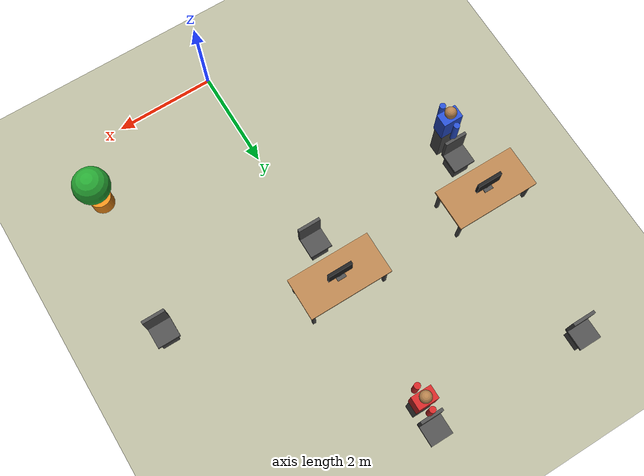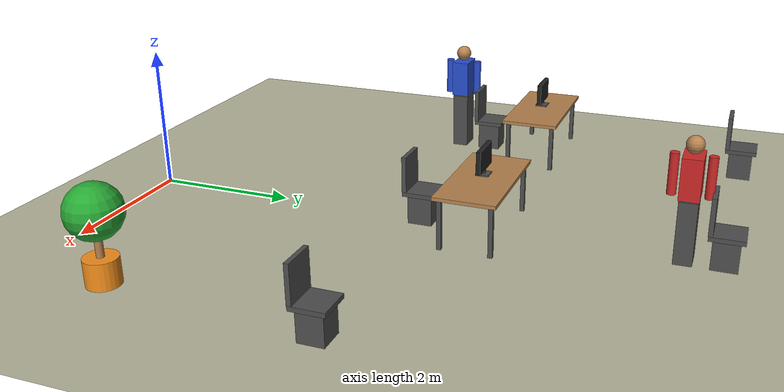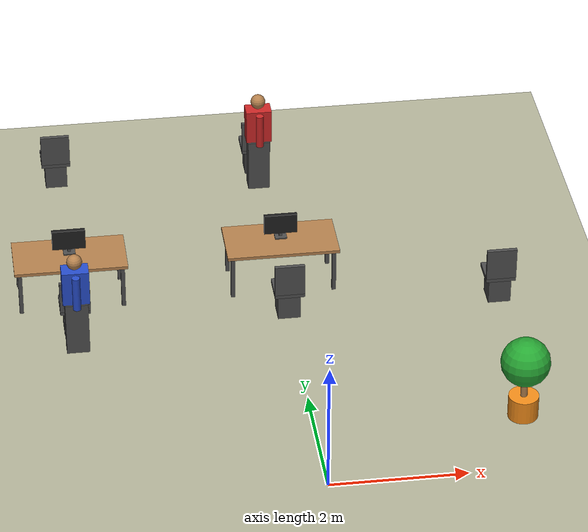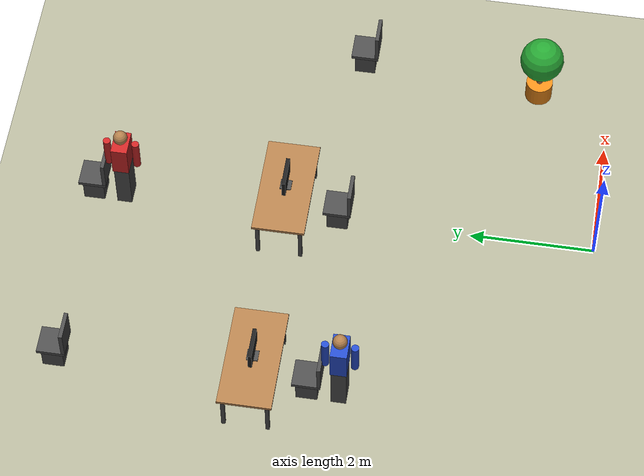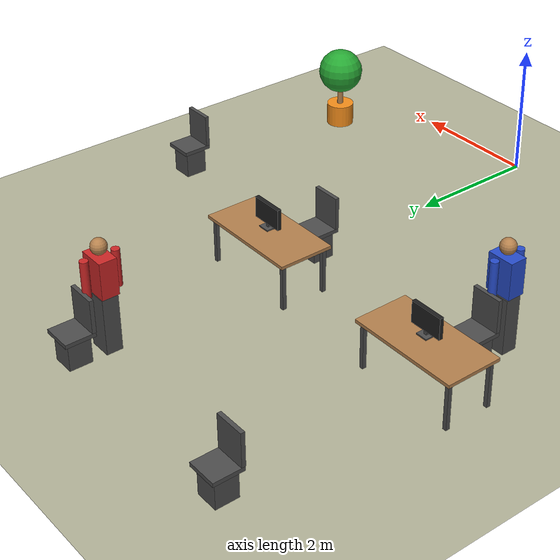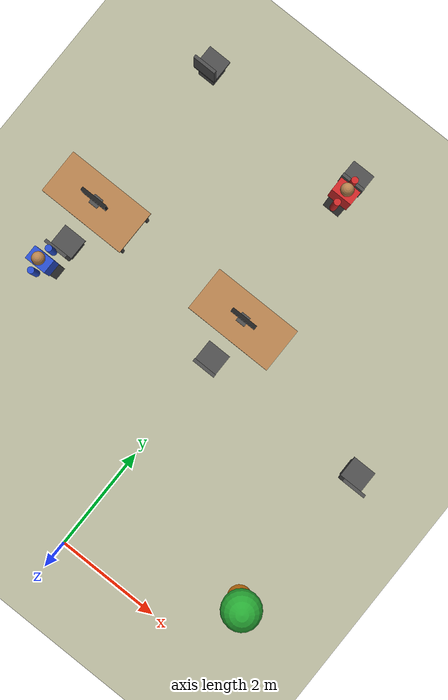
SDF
<sdf version="1.6">
 <world name="smart_building">
  <model name="ground_plane">
   <static>true</static>
   <link name="link">
    <collision name="collision">
     <geometry><plane><normal>0 0 1</normal><size>100 100</size></plane></geometry>
     <surface><friction><ode><mu>1.0</mu><mu2>1.0</mu2></ode></friction></surface>
    </collision>
    <visual name="visual">
     <geometry><plane><normal>0 0 1</normal><size>100 100</size></plane></geometry>
     <material>
      <script><uri>file://media/materials/scripts/gazebo.material</uri><name>Gazebo/Residential</name></script>
     </material>
    </visual>
   </link>
  </model>
  <model name="office_desk_0">
   <static>true</static>
   <pose>-3.2000 5.0000 0.0000 0.0000 0.0000 0.0000</pose>
   <link name="link_0">
    <pose>0.0000 0.0000 0.7250 0.0000 0.0000 0.0000</pose>
    <collision name="link_0_collision">
     <geometry><box><size>1.7000 0.8500 0.0500</size></box></geometry>
    </collision>
    <visual name="link_0_visual">
     <geometry><box><size>1.7000 0.8500 0.0500</size></box></geometry>
     <material>
      <script><uri>file://media/materials/scripts/gazebo.material</uri><name>Gazebo/Wood</name></script>
     </material>
    </visual>
   </link>
   <link name="link_1">
    <pose>-0.7700 -0.3450 0.3500 0.0000 0.0000 0.0000</pose>
    <collision name="link_1_collision">
     <geometry><box><size>0.0600 0.0600 0.7000</size></box></geometry>
    </collision>
    <visual name="link_1_visual">
     <geometry><box><size>0.0600 0.0600 0.7000</size></box></geometry>
     <material>
      <script><uri>file://media/materials/scripts/gazebo.material</uri><name>Gazebo/DarkGrey</name></script>
     </material>
    </visual>
   </link>
   <link name="link_2">
    <pose>-0.7700 0.3450 0.3500 0.0000 0.0000 0.0000</pose>
    <collision name="link_2_collision">
     <geometry><box><size>0.0600 0.0600 0.7000</size></box></geometry>
    </collision>
    <visual name="link_2_visual">
     <geometry><box><size>0.0600 0.0600 0.7000</size></box></geometry>
     <material>
      <script><uri>file://media/materials/scripts/gazebo.material</uri><name>Gazebo/DarkGrey</name></script>
     </material>
    </visual>
   </link>
   <link name="link_3">
    <pose>0.7700 -0.3450 0.3500 0.0000 0.0000 0.0000</pose>
    <collision name="link_3_collision">
     <geometry><box><size>0.0600 0.0600 0.7000</size></box></geometry>
    </collision>
    <visual name="link_3_visual">
     <geometry><box><size>0.0600 0.0600 0.7000</size></box></geometry>
     <material>
      <script><uri>file://media/materials/scripts/gazebo.material</uri><name>Gazebo/DarkGrey</name></script>
     </material>
    </visual>
   </link>
   <link name="link_4">
    <pose>0.7700 0.3450 0.3500 0.0000 0.0000 0.0000</pose>
    <collision name="link_4_collision">
     <geometry><box><size>0.0600 0.0600 0.7000</size></box></geometry>
    </collision>
    <visual name="link_4_visual">
     <geometry><box><size>0.0600 0.0600 0.7000</size></box></geometry>
     <material>
      <script><uri>file://media/materials/scripts/gazebo.material</uri><name>Gazebo/DarkGrey</name></script>
     </material>
    </visual>
   </link>
   <link name="link_5">
    <pose>0.0000 0.0000 1.0300 0.0000 0.0000 0.0000</pose>
    <collision name="link_5_collision">
     <geometry><box><size>0.5000 0.0600 0.3200</size></box></geometry>
    </collision>
    <visual name="link_5_visual">
     <geometry><box><size>0.5000 0.0600 0.3200</size></box></geometry>
     <material>
      <script><uri>file://media/materials/scripts/gazebo.material</uri><name>Gazebo/FlatBlack</name></script>
     </material>
    </visual>
   </link>
   <link name="link_6">
    <pose>0.0000 0.0000 0.8100 0.0000 0.0000 0.0000</pose>
    <collision name="link_6_collision">
     <geometry><box><size>0.1800 0.1800 0.0200</size></box></geometry>
    </collision>
    <visual name="link_6_visual">
     <geometry><box><size>0.1800 0.1800 0.0200</size></box></geometry>
     <material>
      <script><uri>file://media/materials/scripts/gazebo.material</uri><name>Gazebo/DarkGrey</name></script>
     </material>
    </visual>
   </link>
   <link name="link_7">
    <pose>0.0000 0.0000 0.8700 0.0000 0.0000 0.0000</pose>
    <collision name="link_7_collision">
     <geometry><box><size>0.0500 0.0500 0.1200</size></box></geometry>
    </collision>
    <visual name="link_7_visual">
     <geometry><box><size>0.0500 0.0500 0.1200</size></box></geometry>
     <material>
      <script><uri>file://media/materials/scripts/gazebo.material</uri><name>Gazebo/DarkGrey</name></script>
     </material>
    </visual>
   </link>
  </model>
  <model name="office_chair_0">
   <static>true</static>
   <pose>-3.2000 4.1500 0.0000 0.0000 0.0000 0.0000</pose>
   <link name="link_0">
    <pose>0.0000 0.0000 0.4400 0.0000 0.0000 0.0000</pose>
    <collision name="link_0_collision">
     <geometry><box><size>0.4500 0.4500 0.0600</size></box></geometry>
    </collision>
    <visual name="link_0_visual">
     <geometry><box><size>0.4500 0.4500 0.0600</size></box></geometry>
     <material>
      <script><uri>file://media/materials/scripts/gazebo.material</uri><name>Gazebo/DarkGrey</name></script>
     </material>
    </visual>
   </link>
   <link name="link_1">
    <pose>0.0000 -0.2000 0.7200 0.0000 0.0000 0.0000</pose>
    <collision name="link_1_collision">
     <geometry><box><size>0.4500 0.0600 0.5000</size></box></geometry>
    </collision>
    <visual name="link_1_visual">
     <geometry><box><size>0.4500 0.0600 0.5000</size></box></geometry>
     <material>
      <script><uri>file://media/materials/scripts/gazebo.material</uri><name>Gazebo/DarkGrey</name></script>
     </material>
    </visual>
   </link>
   <link name="link_2">
    <pose>0.0000 0.0000 0.2100 0.0000 0.0000 0.0000</pose>
    <collision name="link_2_collision">
     <geometry><box><size>0.3400 0.3400 0.4200</size></box></geometry>
    </collision>
    <visual name="link_2_visual">
     <geometry><box><size>0.3400 0.3400 0.4200</size></box></geometry>
     <material>
      <script><uri>file://media/materials/scripts/gazebo.material</uri><name>Gazebo/DarkGrey</name></script>
     </material>
    </visual>
   </link>
  </model>
  <model name="office_desk_1">
   <static>true</static>
   <pose>0.0000 5.0000 0.0000 0.0000 0.0000 0.0000</pose>
   <link name="link_0">
    <pose>0.0000 0.0000 0.7250 0.0000 0.0000 0.0000</pose>
    <collision name="link_0_collision">
     <geometry><box><size>1.7000 0.8500 0.0500</size></box></geometry>
    </collision>
    <visual name="link_0_visual">
     <geometry><box><size>1.7000 0.8500 0.0500</size></box></geometry>
     <material>
      <script><uri>file://media/materials/scripts/gazebo.material</uri><name>Gazebo/Wood</name></script>
     </material>
    </visual>
   </link>
   <link name="link_1">
    <pose>-0.7700 -0.3450 0.3500 0.0000 0.0000 0.0000</pose>
    <collision name="link_1_collision">
     <geometry><box><size>0.0600 0.0600 0.7000</size></box></geometry>
    </collision>
    <visual name="link_1_visual">
     <geometry><box><size>0.0600 0.0600 0.7000</size></box></geometry>
     <material>
      <script><uri>file://media/materials/scripts/gazebo.material</uri><name>Gazebo/DarkGrey</name></script>
     </material>
    </visual>
   </link>
   <link name="link_2">
    <pose>-0.7700 0.3450 0.3500 0.0000 0.0000 0.0000</pose>
    <collision name="link_2_collision">
     <geometry><box><size>0.0600 0.0600 0.7000</size></box></geometry>
    </collision>
    <visual name="link_2_visual">
     <geometry><box><size>0.0600 0.0600 0.7000</size></box></geometry>
     <material>
      <script><uri>file://media/materials/scripts/gazebo.material</uri><name>Gazebo/DarkGrey</name></script>
     </material>
    </visual>
   </link>
   <link name="link_3">
    <pose>0.7700 -0.3450 0.3500 0.0000 0.0000 0.0000</pose>
    <collision name="link_3_collision">
     <geometry><box><size>0.0600 0.0600 0.7000</size></box></geometry>
    </collision>
    <visual name="link_3_visual">
     <geometry><box><size>0.0600 0.0600 0.7000</size></box></geometry>
     <material>
      <script><uri>file://media/materials/scripts/gazebo.material</uri><name>Gazebo/DarkGrey</name></script>
     </material>
    </visual>
   </link>
   <link name="link_4">
    <pose>0.7700 0.3450 0.3500 0.0000 0.0000 0.0000</pose>
    <collision name="link_4_collision">
     <geometry><box><size>0.0600 0.0600 0.7000</size></box></geometry>
    </collision>
    <visual name="link_4_visual">
     <geometry><box><size>0.0600 0.0600 0.7000</size></box></geometry>
     <material>
      <script><uri>file://media/materials/scripts/gazebo.material</uri><name>Gazebo/DarkGrey</name></script>
     </material>
    </visual>
   </link>
   <link name="link_5">
    <pose>0.0000 0.0000 1.0300 0.0000 0.0000 0.0000</pose>
    <collision name="link_5_collision">
     <geometry><box><size>0.5000 0.0600 0.3200</size></box></geometry>
    </collision>
    <visual name="link_5_visual">
     <geometry><box><size>0.5000 0.0600 0.3200</size></box></geometry>
     <material>
      <script><uri>file://media/materials/scripts/gazebo.material</uri><name>Gazebo/FlatBlack</name></script>
     </material>
    </visual>
   </link>
   <link name="link_6">
    <pose>0.0000 0.0000 0.8100 0.0000 0.0000 0.0000</pose>
    <collision name="link_6_collision">
     <geometry><box><size>0.1800 0.1800 0.0200</size></box></geometry>
    </collision>
    <visual name="link_6_visual">
     <geometry><box><size>0.1800 0.1800 0.0200</size></box></geometry>
     <material>
      <script><uri>file://media/materials/scripts/gazebo.material</uri><name>Gazebo/DarkGrey</name></script>
     </material>
    </visual>
   </link>
   <link name="link_7">
    <pose>0.0000 0.0000 0.8700 0.0000 0.0000 0.0000</pose>
    <collision name="link_7_collision">
     <geometry><box><size>0.0500 0.0500 0.1200</size></box></geometry>
    </collision>
    <visual name="link_7_visual">
     <geometry><box><size>0.0500 0.0500 0.1200</size></box></geometry>
     <material>
      <script><uri>file://media/materials/scripts/gazebo.material</uri><name>Gazebo/DarkGrey</name></script>
     </material>
    </visual>
   </link>
  </model>
  <model name="office_chair_1">
   <static>true</static>
   <pose>0.0000 4.1500 0.0000 0.0000 0.0000 0.0000</pose>
   <link name="link_0">
    <pose>0.0000 0.0000 0.4400 0.0000 0.0000 0.0000</pose>
    <collision name="link_0_collision">
     <geometry><box><size>0.4500 0.4500 0.0600</size></box></geometry>
    </collision>
    <visual name="link_0_visual">
     <geometry><box><size>0.4500 0.4500 0.0600</size></box></geometry>
     <material>
      <script><uri>file://media/materials/scripts/gazebo.material</uri><name>Gazebo/DarkGrey</name></script>
     </material>
    </visual>
   </link>
   <link name="link_1">
    <pose>0.0000 -0.2000 0.7200 0.0000 0.0000 0.0000</pose>
    <collision name="link_1_collision">
     <geometry><box><size>0.4500 0.0600 0.5000</size></box></geometry>
    </collision>
    <visual name="link_1_visual">
     <geometry><box><size>0.4500 0.0600 0.5000</size></box></geometry>
     <material>
      <script><uri>file://media/materials/scripts/gazebo.material</uri><name>Gazebo/DarkGrey</name></script>
     </material>
    </visual>
   </link>
   <link name="link_2">
    <pose>0.0000 0.0000 0.2100 0.0000 0.0000 0.0000</pose>
    <collision name="link_2_collision">
     <geometry><box><size>0.3400 0.3400 0.4200</size></box></geometry>
    </collision>
    <visual name="link_2_visual">
     <geometry><box><size>0.3400 0.3400 0.4200</size></box></geometry>
     <material>
      <script><uri>file://media/materials/scripts/gazebo.material</uri><name>Gazebo/DarkGrey</name></script>
     </material>
    </visual>
   </link>
  </model>
  <model name="office_chair_2">
   <static>true</static>
   <pose>3.2000 4.1500 0.0000 0.0000 0.0000 0.0000</pose>
   <link name="link_0">
    <pose>0.0000 0.0000 0.4400 0.0000 0.0000 0.0000</pose>
    <collision name="link_0_collision">
     <geometry><box><size>0.4500 0.4500 0.0600</size></box></geometry>
    </collision>
    <visual name="link_0_visual">
     <geometry><box><size>0.4500 0.4500 0.0600</size></box></geometry>
     <material>
      <script><uri>file://media/materials/scripts/gazebo.material</uri><name>Gazebo/DarkGrey</name></script>
     </material>
    </visual>
   </link>
   <link name="link_1">
    <pose>0.0000 -0.2000 0.7200 0.0000 0.0000 0.0000</pose>
    <collision name="link_1_collision">
     <geometry><box><size>0.4500 0.0600 0.5000</size></box></geometry>
    </collision>
    <visual name="link_1_visual">
     <geometry><box><size>0.4500 0.0600 0.5000</size></box></geometry>
     <material>
      <script><uri>file://media/materials/scripts/gazebo.material</uri><name>Gazebo/DarkGrey</name></script>
     </material>
    </visual>
   </link>
   <link name="link_2">
    <pose>0.0000 0.0000 0.2100 0.0000 0.0000 0.0000</pose>
    <collision name="link_2_collision">
     <geometry><box><size>0.3400 0.3400 0.4200</size></box></geometry>
    </collision>
    <visual name="link_2_visual">
     <geometry><box><size>0.3400 0.3400 0.4200</size></box></geometry>
     <material>
      <script><uri>file://media/materials/scripts/gazebo.material</uri><name>Gazebo/DarkGrey</name></script>
     </material>
    </visual>
   </link>
  </model>
  <model name="office_chair_3">
   <static>true</static>
   <pose>-3.2000 8.1500 0.0000 0.0000 0.0000 0.0000</pose>
   <link name="link_0">
    <pose>0.0000 0.0000 0.4400 0.0000 0.0000 0.0000</pose>
    <collision name="link_0_collision">
     <geometry><box><size>0.4500 0.4500 0.0600</size></box></geometry>
    </collision>
    <visual name="link_0_visual">
     <geometry><box><size>0.4500 0.4500 0.0600</size></box></geometry>
     <material>
      <script><uri>file://media/materials/scripts/gazebo.material</uri><name>Gazebo/DarkGrey</name></script>
     </material>
    </visual>
   </link>
   <link name="link_1">
    <pose>0.0000 -0.2000 0.7200 0.0000 0.0000 0.0000</pose>
    <collision name="link_1_collision">
     <geometry><box><size>0.4500 0.0600 0.5000</size></box></geometry>
    </collision>
    <visual name="link_1_visual">
     <geometry><box><size>0.4500 0.0600 0.5000</size></box></geometry>
     <material>
      <script><uri>file://media/materials/scripts/gazebo.material</uri><name>Gazebo/DarkGrey</name></script>
     </material>
    </visual>
   </link>
   <link name="link_2">
    <pose>0.0000 0.0000 0.2100 0.0000 0.0000 0.0000</pose>
    <collision name="link_2_collision">
     <geometry><box><size>0.3400 0.3400 0.4200</size></box></geometry>
    </collision>
    <visual name="link_2_visual">
     <geometry><box><size>0.3400 0.3400 0.4200</size></box></geometry>
     <material>
      <script><uri>file://media/materials/scripts/gazebo.material</uri><name>Gazebo/DarkGrey</name></script>
     </material>
    </visual>
   </link>
  </model>
  <model name="office_chair_4">
   <static>true</static>
   <pose>0.0000 8.1500 0.0000 0.0000 0.0000 0.0000</pose>
   <link name="link_0">
    <pose>0.0000 0.0000 0.4400 0.0000 0.0000 0.0000</pose>
    <collision name="link_0_collision">
     <geometry><box><size>0.4500 0.4500 0.0600</size></box></geometry>
    </collision>
    <visual name="link_0_visual">
     <geometry><box><size>0.4500 0.4500 0.0600</size></box></geometry>
     <material>
      <script><uri>file://media/materials/scripts/gazebo.material</uri><name>Gazebo/DarkGrey</name></script>
     </material>
    </visual>
   </link>
   <link name="link_1">
    <pose>0.0000 -0.2000 0.7200 0.0000 0.0000 0.0000</pose>
    <collision name="link_1_collision">
     <geometry><box><size>0.4500 0.0600 0.5000</size></box></geometry>
    </collision>
    <visual name="link_1_visual">
     <geometry><box><size>0.4500 0.0600 0.5000</size></box></geometry>
     <material>
      <script><uri>file://media/materials/scripts/gazebo.material</uri><name>Gazebo/DarkGrey</name></script>
     </material>
    </visual>
   </link>
   <link name="link_2">
    <pose>0.0000 0.0000 0.2100 0.0000 0.0000 0.0000</pose>
    <collision name="link_2_collision">
     <geometry><box><size>0.3400 0.3400 0.4200</size></box></geometry>
    </collision>
    <visual name="link_2_visual">
     <geometry><box><size>0.3400 0.3400 0.4200</size></box></geometry>
     <material>
      <script><uri>file://media/materials/scripts/gazebo.material</uri><name>Gazebo/DarkGrey</name></script>
     </material>
    </visual>
   </link>
  </model>
  <model name="person_office_0">
   <static>true</static>
   <pose>-3.2000 3.6500 0.0000 0.0000 0.0000 0.0000</pose>
   <link name="link_0">
    <pose>0.0000 0.0000 0.4250 0.0000 0.0000 0.0000</pose>
    <collision name="link_0_collision">
     <geometry><box><size>0.3400 0.2400 0.8500</size></box></geometry>
    </collision>
    <visual name="link_0_visual">
     <geometry><box><size>0.3400 0.2400 0.8500</size></box></geometry>
     <material>
      <script><uri>file://media/materials/scripts/gazebo.material</uri><name>Gazebo/DarkGrey</name></script>
     </material>
    </visual>
   </link>
   <link name="link_1">
    <pose>0.0000 0.0000 1.1500 0.0000 0.0000 0.0000</pose>
    <collision name="link_1_collision">
     <geometry><box><size>0.4000 0.2600 0.5500</size></box></geometry>
    </collision>
    <visual name="link_1_visual">
     <geometry><box><size>0.4000 0.2600 0.5500</size></box></geometry>
     <material>
      <script><uri>file://media/materials/scripts/gazebo.material</uri><name>Gazebo/Blue</name></script>
     </material>
    </visual>
   </link>
   <link name="link_2">
    <pose>0.0000 0.2300 1.1500 0.0000 0.0000 0.0000</pose>
    <collision name="link_2_collision">
     <geometry><cylinder><radius>0.0600</radius><length>0.5500</length></cylinder></geometry>
    </collision>
    <visual name="link_2_visual">
     <geometry><cylinder><radius>0.0600</radius><length>0.5500</length></cylinder></geometry>
     <material>
      <script><uri>file://media/materials/scripts/gazebo.material</uri><name>Gazebo/Blue</name></script>
     </material>
    </visual>
   </link>
   <link name="link_3">
    <pose>0.0000 -0.2300 1.1500 0.0000 0.0000 0.0000</pose>
    <collision name="link_3_collision">
     <geometry><cylinder><radius>0.0600</radius><length>0.5500</length></cylinder></geometry>
    </collision>
    <visual name="link_3_visual">
     <geometry><cylinder><radius>0.0600</radius><length>0.5500</length></cylinder></geometry>
     <material>
      <script><uri>file://media/materials/scripts/gazebo.material</uri><name>Gazebo/Blue</name></script>
     </material>
    </visual>
   </link>
   <link name="link_4">
    <pose>0.0000 0.0000 1.5500 0.0000 0.0000 0.0000</pose>
    <collision name="link_4_collision"><geometry><sphere><radius>0.1150</radius></sphere></geometry></collision>
    <visual name="link_4_visual">
     <geometry><sphere><radius>0.1150</radius></sphere></geometry>
     <material>
      <script><uri>file://media/materials/scripts/gazebo.material</uri><name>Gazebo/Wood</name></script>
     </material>
    </visual>
   </link>
  </model>
  <model name="person_office_1">
   <static>true</static>
   <pose>0.0000 7.6500 0.0000 0.0000 0.0000 0.0000</pose>
   <link name="link_0">
    <pose>0.0000 0.0000 0.4250 0.0000 0.0000 0.0000</pose>
    <collision name="link_0_collision">
     <geometry><box><size>0.3400 0.2400 0.8500</size></box></geometry>
    </collision>
    <visual name="link_0_visual">
     <geometry><box><size>0.3400 0.2400 0.8500</size></box></geometry>
     <material>
      <script><uri>file://media/materials/scripts/gazebo.material</uri><name>Gazebo/DarkGrey</name></script>
     </material>
    </visual>
   </link>
   <link name="link_1">
    <pose>0.0000 0.0000 1.1500 0.0000 0.0000 0.0000</pose>
    <collision name="link_1_collision">
     <geometry><box><size>0.4000 0.2600 0.5500</size></box></geometry>
    </collision>
    <visual name="link_1_visual">
     <geometry><box><size>0.4000 0.2600 0.5500</size></box></geometry>
     <material>
      <script><uri>file://media/materials/scripts/gazebo.material</uri><name>Gazebo/RedBright</name></script>
     </material>
    </visual>
   </link>
   <link name="link_2">
    <pose>0.0000 0.2300 1.1500 0.0000 0.0000 0.0000</pose>
    <collision name="link_2_collision">
     <geometry><cylinder><radius>0.0600</radius><length>0.5500</length></cylinder></geometry>
    </collision>
    <visual name="link_2_visual">
     <geometry><cylinder><radius>0.0600</radius><length>0.5500</length></cylinder></geometry>
     <material>
      <script><uri>file://media/materials/scripts/gazebo.material</uri><name>Gazebo/RedBright</name></script>
     </material>
    </visual>
   </link>
   <link name="link_3">
    <pose>0.0000 -0.2300 1.1500 0.0000 0.0000 0.0000</pose>
    <collision name="link_3_collision">
     <geometry><cylinder><radius>0.0600</radius><length>0.5500</length></cylinder></geometry>
    </collision>
    <visual name="link_3_visual">
     <geometry><cylinder><radius>0.0600</radius><length>0.5500</length></cylinder></geometry>
     <material>
      <script><uri>file://media/materials/scripts/gazebo.material</uri><name>Gazebo/RedBright</name></script>
     </material>
    </visual>
   </link>
   <link name="link_4">
    <pose>0.0000 0.0000 1.5500 0.0000 0.0000 0.0000</pose>
    <collision name="link_4_collision"><geometry><sphere><radius>0.1150</radius></sphere></geometry></collision>
    <visual name="link_4_visual">
     <geometry><sphere><radius>0.1150</radius></sphere></geometry>
     <material>
      <script><uri>file://media/materials/scripts/gazebo.material</uri><name>Gazebo/Wood</name></script>
     </material>
    </visual>
   </link>
  </model>
  <model name="plant_corridor_1">
   <static>true</static>
   <pose>3.0000 1.2000 0.0000 0.0000 0.0000 0.0000</pose>
   <link name="link_0">
    <pose>0.0000 0.0000 0.1800 0.0000 0.0000 0.0000</pose>
    <collision name="link_0_collision">
     <geometry><cylinder><radius>0.2200</radius><length>0.3600</length></cylinder></geometry>
    </collision>
    <visual name="link_0_visual">
     <geometry><cylinder><radius>0.2200</radius><length>0.3600</length></cylinder></geometry>
     <material>
      <script><uri>file://media/materials/scripts/gazebo.material</uri><name>Gazebo/Orange</name></script>
     </material>
    </visual>
   </link>
   <link name="link_1">
    <pose>0.0000 0.0000 0.5000 0.0000 0.0000 0.0000</pose>
    <collision name="link_1_collision">
     <geometry><cylinder><radius>0.0500</radius><length>0.4000</length></cylinder></geometry>
    </collision>
    <visual name="link_1_visual">
     <geometry><cylinder><radius>0.0500</radius><length>0.4000</length></cylinder></geometry>
     <material>
      <script><uri>file://media/materials/scripts/gazebo.material</uri><name>Gazebo/Wood</name></script>
     </material>
    </visual>
   </link>
   <link name="link_2">
    <pose>0.0000 0.0000 0.9500 0.0000 0.0000 0.0000</pose>
    <collision name="link_2_collision"><geometry><sphere><radius>0.3600</radius></sphere></geometry></collision>
    <visual name="link_2_visual">
     <geometry><sphere><radius>0.3600</radius></sphere></geometry>
     <material>
      <script><uri>file://media/materials/scripts/gazebo.material</uri><name>Gazebo/Green</name></script>
     </material>
    </visual>
   </link>
  </model>
 </world>
</sdf>
